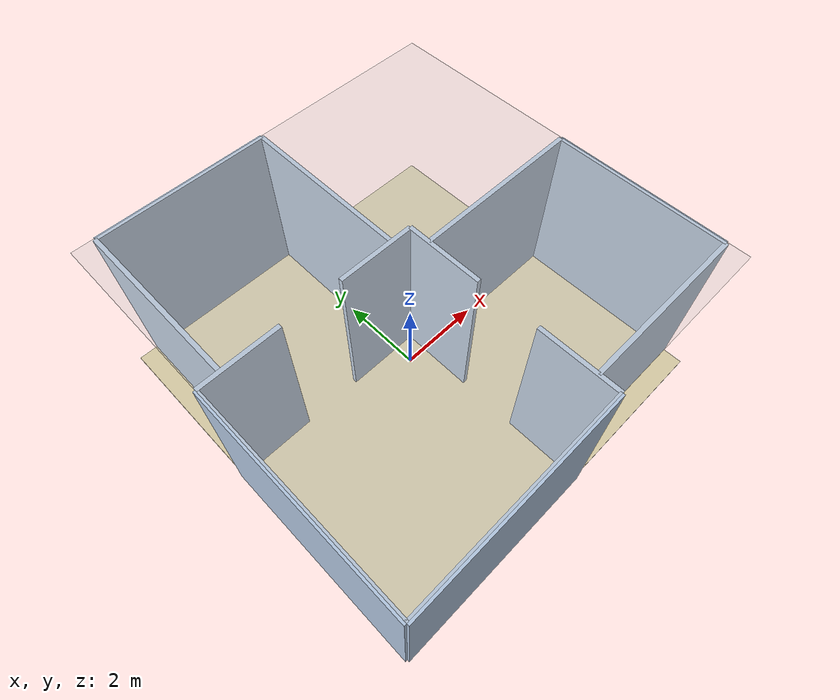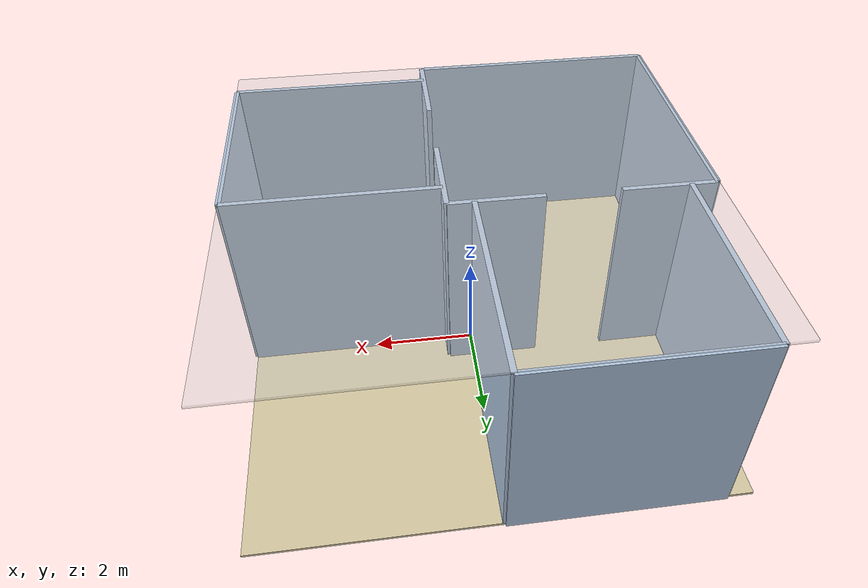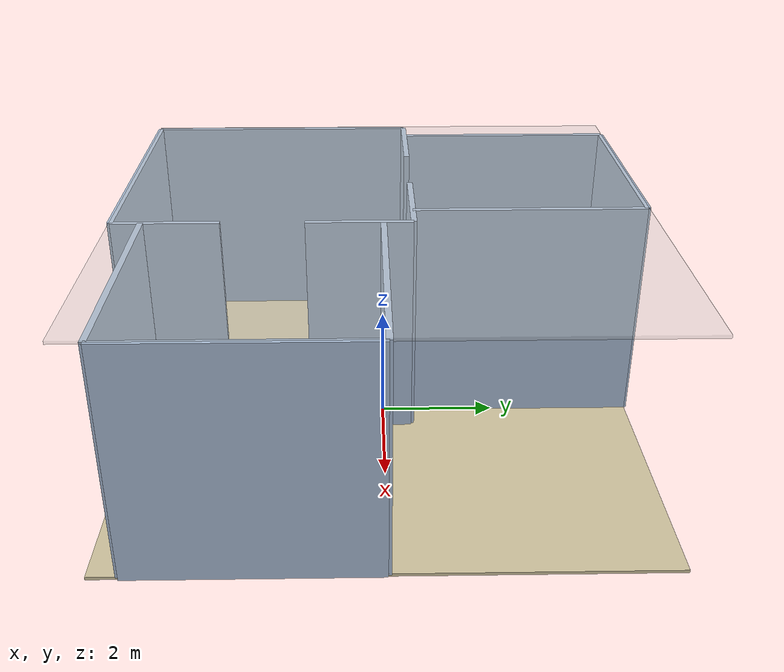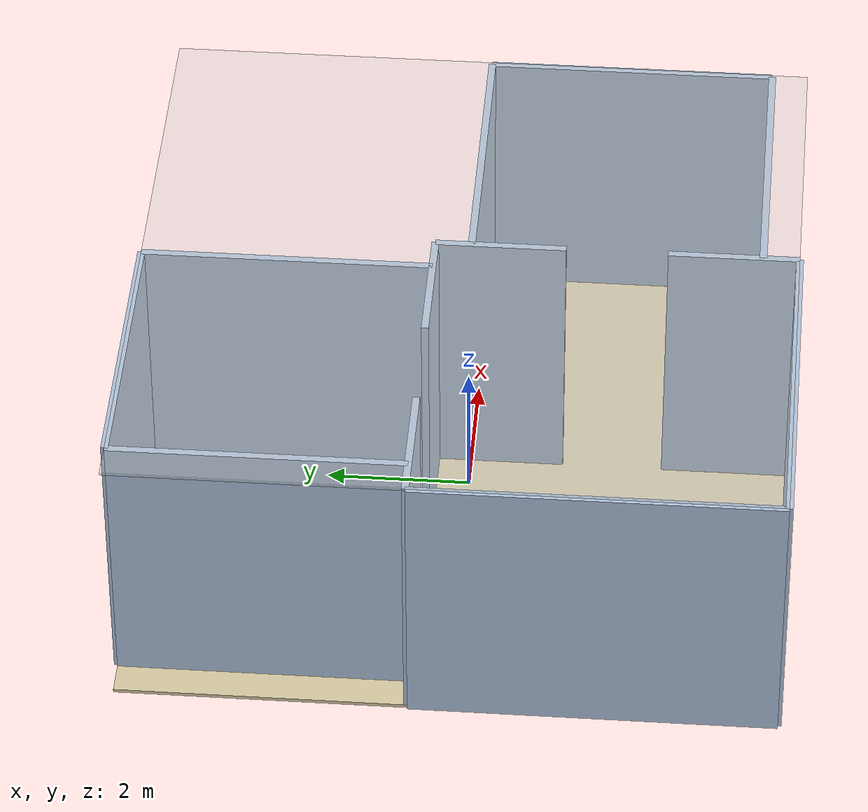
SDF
<sdf version="1.9">
 <world name="rl_room_apartment">
  <physics name="1ms" type="ignored">
   <max_step_size>0.001</max_step_size>
   <real_time_factor>1.0</real_time_factor>
  </physics>
  <plugin filename="gz-sim-physics-system" name="gz::sim::systems::Physics"/>
  <plugin filename="gz-sim-scene-broadcaster-system" name="gz::sim::systems::SceneBroadcaster"/>
  <plugin filename="gz-sim-user-commands-system" name="gz::sim::systems::UserCommands"/>
  <plugin filename="gz-sim-sensors-system" name="gz::sim::systems::Sensors">
   <render_engine>ogre2</render_engine>
  </plugin>
  <plugin filename="gz-sim-imu-system" name="gz::sim::systems::Imu"/>
  <plugin filename="gz-sim-navsat-system" name="gz::sim::systems::NavSat"/>
  <spherical_coordinates>
   <latitude_deg>-35.363262</latitude_deg>
   <longitude_deg>149.165237</longitude_deg>
   <elevation>584.0</elevation>
   <heading_deg>0</heading_deg>
   <surface_model>EARTH_WGS84</surface_model>
  </spherical_coordinates>
  <light type="directional" name="main_light">
   <cast_shadows>false</cast_shadows>
   <pose>0 0 10 0 0 0</pose>
   <diffuse>1.0 1.0 1.0 1</diffuse>
   <specular>0.5 0.5 0.5 1</specular>
   <direction>0.1 0.1 -1</direction>
  </light>
  <model name="floor">
   <static>true</static>
   <link name="link">
    <collision name="c"><geometry><box><size>9.0 9.0 0.05</size></box></geometry></collision>
    <visual name="v">
     <geometry><box><size>9.0 9.0 0.05</size></box></geometry>
     <material>
      <ambient>0.85 0.80 0.65 1</ambient>
      <diffuse>0.85 0.80 0.65 1</diffuse>
      <specular>0.1 0.1 0.1 1</specular>
     </material>
    </visual>
   </link>
  </model>
  <model name="ceiling">
   <static>true</static>
   <link name="ceiling_link">
    <collision name="ceiling_col">
     <pose>0 0 4.0 0 0 0</pose>
     <geometry><box><size>9.0 9.0 0.05</size></box></geometry>
    </collision>
    <visual name="ceiling_vis">
     <pose>0 0 4.0 0 0 0</pose>
     <geometry><box><size>9.0 9.0 0.05</size></box></geometry>
     <material><ambient>0.8 0.8 0.8 0.3</ambient><diffuse>0.8 0.8 0.8 0.3</diffuse></material>
    </visual>
   </link>
  </model>
  <model name="a_south">
   <static>true</static>
   <pose>-2.0 -4.5 2.0 0 0 0</pose>
   <link name="link">
    <collision name="c"><geometry><box><size>5.0 0.1 4.0</size></box></geometry></collision>
    <visual name="v">
     <geometry><box><size>5.0 0.1 4.0</size></box></geometry>
     <material><ambient>0.7 0.78 0.88 1</ambient><diffuse>0.7 0.78 0.88 1</diffuse></material>
    </visual>
   </link>
  </model>
  <model name="a_west">
   <static>true</static>
   <pose>-4.5 -2.0 2.0 0 0 0</pose>
   <link name="link">
    <collision name="c"><geometry><box><size>0.1 5.0 4.0</size></box></geometry></collision>
    <visual name="v">
     <geometry><box><size>0.1 5.0 4.0</size></box></geometry>
     <material><ambient>0.7 0.78 0.88 1</ambient><diffuse>0.7 0.78 0.88 1</diffuse></material>
    </visual>
   </link>
  </model>
  <model name="a_east_lo">
   <static>true</static>
   <pose>0.5 -3.6 2.0 0 0 0</pose>
   <link name="link">
    <collision name="c"><geometry><box><size>0.1 1.8 4.0</size></box></geometry></collision>
    <visual name="v">
     <geometry><box><size>0.1 1.8 4.0</size></box></geometry>
     <material><ambient>0.7 0.78 0.88 1</ambient><diffuse>0.7 0.78 0.88 1</diffuse></material>
    </visual>
   </link>
  </model>
  <model name="a_east_hi">
   <static>true</static>
   <pose>0.5 -0.4 2.0 0 0 0</pose>
   <link name="link">
    <collision name="c"><geometry><box><size>0.1 1.8 4.0</size></box></geometry></collision>
    <visual name="v">
     <geometry><box><size>0.1 1.8 4.0</size></box></geometry>
     <material><ambient>0.7 0.78 0.88 1</ambient><diffuse>0.7 0.78 0.88 1</diffuse></material>
    </visual>
   </link>
  </model>
  <model name="a_north_w">
   <static>true</static>
   <pose>-3.6 0.5 2.0 0 0 0</pose>
   <link name="link">
    <collision name="c"><geometry><box><size>1.8 0.1 4.0</size></box></geometry></collision>
    <visual name="v">
     <geometry><box><size>1.8 0.1 4.0</size></box></geometry>
     <material><ambient>0.7 0.78 0.88 1</ambient><diffuse>0.7 0.78 0.88 1</diffuse></material>
    </visual>
   </link>
  </model>
  <model name="a_north_e">
   <static>true</static>
   <pose>-0.4 0.5 2.0 0 0 0</pose>
   <link name="link">
    <collision name="c"><geometry><box><size>1.8 0.1 4.0</size></box></geometry></collision>
    <visual name="v">
     <geometry><box><size>1.8 0.1 4.0</size></box></geometry>
     <material><ambient>0.7 0.78 0.88 1</ambient><diffuse>0.7 0.78 0.88 1</diffuse></material>
    </visual>
   </link>
  </model>
  <model name="b_east">
   <static>true</static>
   <pose>4.5 -2.0 2.0 0 0 0</pose>
   <link name="link">
    <collision name="c"><geometry><box><size>0.1 4.0 4.0</size></box></geometry></collision>
    <visual name="v">
     <geometry><box><size>0.1 4.0 4.0</size></box></geometry>
     <material><ambient>0.7 0.78 0.88 1</ambient><diffuse>0.7 0.78 0.88 1</diffuse></material>
    </visual>
   </link>
  </model>
  <model name="b_south">
   <static>true</static>
   <pose>2.5 -4.0 2.0 0 0 0</pose>
   <link name="link">
    <collision name="c"><geometry><box><size>4.0 0.1 4.0</size></box></geometry></collision>
    <visual name="v">
     <geometry><box><size>4.0 0.1 4.0</size></box></geometry>
     <material><ambient>0.7 0.78 0.88 1</ambient><diffuse>0.7 0.78 0.88 1</diffuse></material>
    </visual>
   </link>
  </model>
  <model name="b_north">
   <static>true</static>
   <pose>2.5 0.0 2.0 0 0 0</pose>
   <link name="link">
    <collision name="c"><geometry><box><size>4.0 0.1 4.0</size></box></geometry></collision>
    <visual name="v">
     <geometry><box><size>4.0 0.1 4.0</size></box></geometry>
     <material><ambient>0.7 0.78 0.88 1</ambient><diffuse>0.7 0.78 0.88 1</diffuse></material>
    </visual>
   </link>
  </model>
  <model name="c_north">
   <static>true</static>
   <pose>-2.0 4.5 2.0 0 0 0</pose>
   <link name="link">
    <collision name="c"><geometry><box><size>4.0 0.1 4.0</size></box></geometry></collision>
    <visual name="v">
     <geometry><box><size>4.0 0.1 4.0</size></box></geometry>
     <material><ambient>0.7 0.78 0.88 1</ambient><diffuse>0.7 0.78 0.88 1</diffuse></material>
    </visual>
   </link>
  </model>
  <model name="c_west">
   <static>true</static>
   <pose>-4.0 2.5 2.0 0 0 0</pose>
   <link name="link">
    <collision name="c"><geometry><box><size>0.1 4.0 4.0</size></box></geometry></collision>
    <visual name="v">
     <geometry><box><size>0.1 4.0 4.0</size></box></geometry>
     <material><ambient>0.7 0.78 0.88 1</ambient><diffuse>0.7 0.78 0.88 1</diffuse></material>
    </visual>
   </link>
  </model>
  <model name="c_east">
   <static>true</static>
   <pose>0.0 2.5 2.0 0 0 0</pose>
   <link name="link">
    <collision name="c"><geometry><box><size>0.1 4.0 4.0</size></box></geometry></collision>
    <visual name="v">
     <geometry><box><size>0.1 4.0 4.0</size></box></geometry>
     <material><ambient>0.7 0.78 0.88 1</ambient><diffuse>0.7 0.78 0.88 1</diffuse></material>
    </visual>
   </link>
  </model>
 </world>
</sdf>
